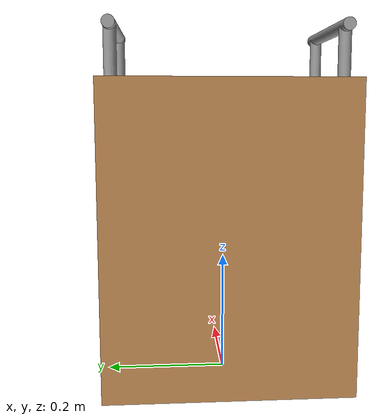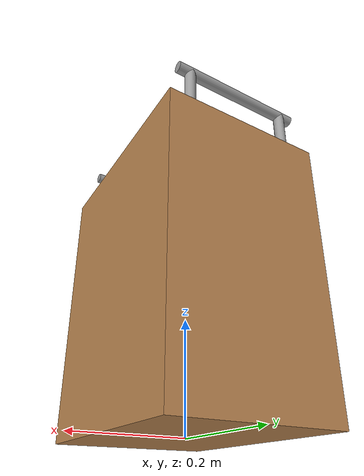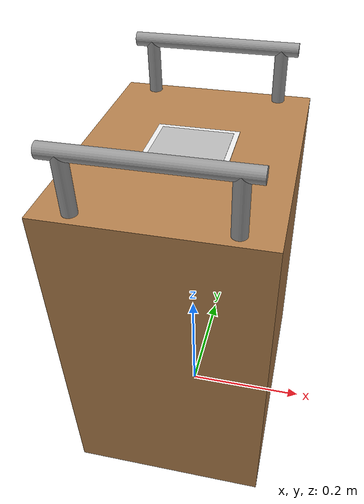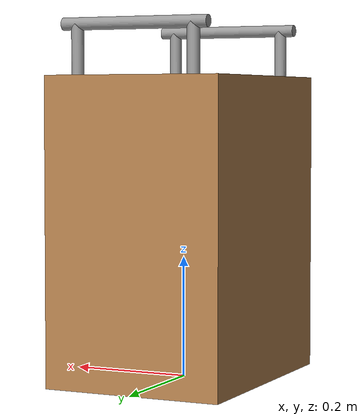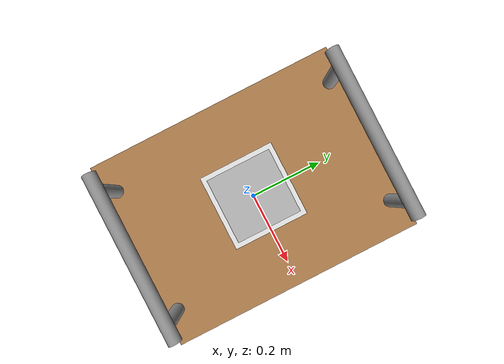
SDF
<sdf version='1.3'>
<model name='box_with_handles'>
      <static>1</static>
      <link name='box_with_handles'>
        <inertial>
          <pose>0.0 0.0 0.2 0.0 0.0 0.0</pose>
          <inertia>
            <ixx>1.0</ixx>
            <ixy>0.0</ixy>
            <ixz>0.0</ixz>
            <iyy>1.0</iyy>
            <iyz>0.0</iyz>
            <izz>1.0</izz>
          </inertia>
          <mass>2.0</mass>
        </inertial>
        <collision name='box'>
          <pose>0.0 0.0 0.25 0.0 0.0 0.0</pose>
          <geometry>
            <box>
              <size>0.3 0.4 0.5</size>
            </box>
          </geometry>
          <surface>
            <bounce/>
            <friction>
              <ode/>
            </friction>
            <contact>
              <ode/>
            </contact>
          </surface>
        </collision>
        <visual name='visual1'>
          <pose>0.0 0.0 0.25 0.0 0.0 0.0</pose>
          <geometry>
            <box>
              <size>0.3 0.4 0.5</size>
            </box>
          </geometry>
          <material>
            <script>
              <uri>file://media/materials/scripts/gazebo.material</uri>
              <name>Gazebo/Wood</name>
            </script>
          </material>
        </visual>
        <collision name='handle_left_1'>
          <pose>0.1 0.18 0.54 0.0 0.0 0.0</pose>
          <geometry>
            <cylinder>
              <radius>0.01</radius>
              <length>0.08</length>
            </cylinder>
          </geometry>
          <surface>
            <bounce/>
            <friction>
              <ode/>
            </friction>
            <contact>
              <ode/>
            </contact>
          </surface>
        </collision>
        <visual name='handle_left_1'>
          <pose>0.1 0.18 0.54 0.0 0.0 0.0</pose>
          <geometry>
            <cylinder>
              <radius>0.01</radius>
              <length>0.08</length>
            </cylinder>
          </geometry>
          <material>
            <script>
              <uri>file://media/materials/scripts/gazebo.material</uri>
              <name>Gazebo/Grey</name>
            </script>
          </material>
        </visual>
        <collision name='handle_left_2'>
          <pose>-0.1 0.18 0.54 0.0 0.0 0.0</pose>
          <geometry>
            <cylinder>
              <radius>0.01</radius>
              <length>0.08</length>
            </cylinder>
          </geometry>
          <surface>
            <bounce/>
            <friction>
              <ode/>
            </friction>
            <contact>
              <ode/>
            </contact>
          </surface>
        </collision>
        <visual name='handle_left_2'>
          <pose>-0.1 0.18 0.54 0.0 0.0 0.0</pose>
          <geometry>
            <cylinder>
              <radius>0.01</radius>
              <length>0.08</length>
            </cylinder>
          </geometry>
          <material>
            <script>
              <uri>file://media/materials/scripts/gazebo.material</uri>
              <name>Gazebo/Grey</name>
            </script>
          </material>
        </visual>
        <collision name='handle_left_3'>
          <pose>0.0 0.18 0.58 0.0 1.57 0.0</pose>
          <geometry>
            <cylinder>
              <radius>0.01</radius>
              <length>0.25</length>
            </cylinder>
          </geometry>
          <surface>
            <bounce/>
            <friction>
              <ode/>
            </friction>
            <contact>
              <ode/>
            </contact>
          </surface>
        </collision>
        <visual name='handle_left_3'>
          <pose>0.0 0.18 0.58 0.0 1.57 0.0</pose>
          <geometry>
            <cylinder>
              <radius>0.01</radius>
              <length>0.25</length>
            </cylinder>
          </geometry>
          <material>
            <script>
              <uri>file://media/materials/scripts/gazebo.material</uri>
              <name>Gazebo/Grey</name>
            </script>
          </material>
        </visual>
        <collision name='handle_left_1'>
          <pose>0.1 -0.18 0.54 0.0 0.0 0.0</pose>
          <geometry>
            <cylinder>
              <radius>0.01</radius>
              <length>0.08</length>
            </cylinder>
          </geometry>
          <surface>
            <bounce/>
            <friction>
              <ode/>
            </friction>
            <contact>
              <ode/>
            </contact>
          </surface>
        </collision>
        <visual name='handle_right_1'>
          <pose>0.1 -0.18 0.54 0.0 0.0 0.0</pose>
          <geometry>
            <cylinder>
              <radius>0.01</radius>
              <length>0.08</length>
            </cylinder>
          </geometry>
          <material>
            <script>
              <uri>file://media/materials/scripts/gazebo.material</uri>
              <name>Gazebo/Grey</name>
            </script>
          </material>
        </visual>
        <collision name='handle_right_2'>
          <pose>-0.1 -0.18 0.54 0.0 0.0 0.0</pose>
          <geometry>
            <cylinder>
              <radius>0.01</radius>
              <length>0.08</length>
            </cylinder>
          </geometry>
          <surface>
            <bounce/>
            <friction>
              <ode/>
            </friction>
            <contact>
              <ode/>
            </contact>
          </surface>
        </collision>
        <visual name='handle_right_2'>
          <pose>-0.1 -0.18 0.54 0.0 0.0 0.0</pose>
          <geometry>
            <cylinder>
              <radius>0.01</radius>
              <length>0.08</length>
            </cylinder>
          </geometry>
          <material>
            <script>
              <uri>file://media/materials/scripts/gazebo.material</uri>
              <name>Gazebo/Grey</name>
            </script>
          </material>
        </visual>
        <collision name='handle_right_3'>
          <pose>0.0 -0.18 0.58 0.0 1.57 0.0</pose>
          <geometry>
            <cylinder>
              <radius>0.01</radius>
              <length>0.25</length>
            </cylinder>
          </geometry>
          <surface>
            <bounce/>
            <friction>
              <ode/>
            </friction>
            <contact>
              <ode/>
            </contact>
          </surface>
        </collision>
        <visual name='handle_right_3'>
          <pose>0.0 -0.18 0.58 0.0 1.57 0.0</pose>
          <geometry>
            <cylinder>
              <radius>0.01</radius>
              <length>0.25</length>
            </cylinder>
          </geometry>
          <material>
            <script>
              <uri>file://media/materials/scripts/gazebo.material</uri>
              <name>Gazebo/Grey</name>
            </script>
          </material>
        </visual>
        <visual name='visual2'>
          <pose>0.0 0.0 0.5005 0.0 0.0 0.0</pose>
          <geometry>
            <box>
              <size>0.12 0.12 0.001</size>
            </box>
          </geometry>
          <material>
            <script>
              <uri>file://media/materials/scripts/gazebo.material</uri>
              <name>Gazebo/White</name>
            </script>
          </material>
        </visual>
        <visual name="visual3">
          <pose>0.0 0.0 0.501 0.0 0.0 1.57</pose>
          <geometry>
            <box>
              <size>0.105 0.105 0.001</size>
            </box>
          </geometry>
          <material>
            <script>
              <uri>model://box_with_handles/material/scripts</uri>
              <uri>model://box_with_handles/material/textures</uri>
              <name>Aruco/aruco_marker_original_582</name>
            </script>
          </material>
        </visual>
        <velocity_decay>
          <linear>0.000000</linear>
          <angular>0.000000</angular>
        </velocity_decay>
        <self_collide>0</self_collide>
        <kinematic>0</kinematic>
        <gravity>1</gravity>
      </link>
    </model>
</sdf>
